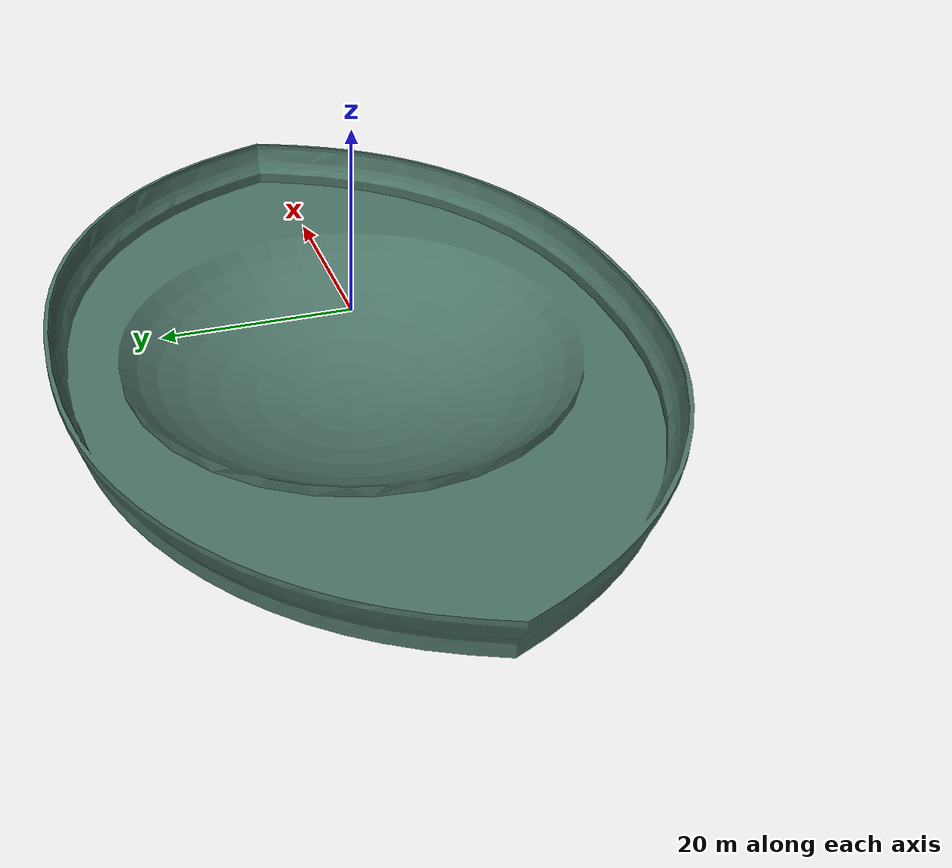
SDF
<?xml version="1.0" ?>
<sdf version="1.5">
  <world name="empty_underwater">
    <physics name="default_physics" default="true" type="ode">
      <max_step_size>0.01</max_step_size>
      <real_time_factor>1</real_time_factor>
      <real_time_update_rate>100</real_time_update_rate>
      <ode>
        <solver>
          <type>quick</type>
          <iters>50</iters>
          <sor>0.5</sor>
        </solver>
      </ode>
    </physics>
    <scene>
      <ambient>0.21 0.65 0.72 1.0</ambient>
      <sky>
        <clouds>
          <speed>12</speed>
        </clouds>
      </sky>
      <shadows>1</shadows>
    </scene>

    <!-- TRANSDEC  -->
    <spherical_coordinates>
      <latitude_deg>32.703409472680775</latitude_deg>
      <longitude_deg>-117.25032387042825</longitude_deg>
    </spherical_coordinates>

    <!-- Global light source -->
    <light type="directional" name="sun">
      <cast_shadows>true</cast_shadows>
      <pose>0 0 10 0 0 0</pose>
      <diffuse>0.2 0.2 0.2 1</diffuse>
      <specular>0.0 0.0 0.0 1</specular>
      <attenuation>
        <range>1000</range>
        <constant>0.9</constant>
        <linear>0.01</linear>
        <quadratic>0.001</quadratic>
        </attenuation>
      <direction>0.5 0.1 -0.9</direction>
    </light>

    <!-- Bounding box with sea surface -->
    <include>
      <uri>model://transdec</uri>
      <pose>0 0 0 0 0 0</pose>
    </include>

    <plugin name="underwater_current_plugin" filename="libuuv_underwater_current_ros_plugin.so">
      <namespace>hydrodynamics</namespace>
      <constant_current>
        <topic>current_velocity</topic>
        <velocity>
          <mean>0</mean>
          <min>0</min>
          <max>5</max>
          <mu>0.0</mu>
          <noiseAmp>0.0</noiseAmp>
        </velocity>

        <horizontal_angle>
          <mean>0</mean>
          <min>-3.141592653589793238</min>
          <max>3.141592653589793238</max>
          <mu>0.0</mu>
          <noiseAmp>0.0</noiseAmp>
        </horizontal_angle>

        <vertical_angle>
          <mean>0</mean>
          <min>-3.141592653589793238</min>
          <max>3.141592653589793238</max>
          <mu>0.0</mu>
          <noiseAmp>0.0</noiseAmp>
        </vertical_angle>
      </constant_current>
    </plugin>

    <plugin name="sc_interface" filename="libuuv_sc_ros_interface_plugin.so"/>

  </world>
</sdf>

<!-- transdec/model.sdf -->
<sdf version="1.5">
  <model name="TRANSDEC">
    <static>true</static>
    <link name="link">

      <visual name="transdec">
        <pose>0 0 0 1.5707963267949 0 0</pose>
        <geometry>
          <mesh><uri>file://models/transdec/TRANSDEC.dae</uri></mesh>
        </geometry>
      </visual>

      <collision name="transdec">
        <pose>0 0 0 1.5707963267949 0 0</pose>
        <geometry>
          <mesh><uri>file://models/transdec/Transdec.stl</uri></mesh>
        </geometry>
      </collision>

    </link>
  </model>
</sdf>
